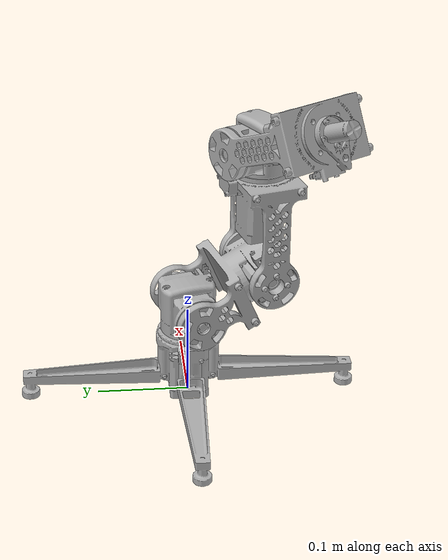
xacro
<?xml version="1.0" ?>
<robot name="proto" xmlns:xacro="http://www.ros.org/wiki/xacro">

<xacro:include filename="$(find proto_description)/urdf/materials.xacro" />
<xacro:include filename="$(find proto_description)/urdf/proto.trans" />
<xacro:include filename="$(find proto_description)/urdf/proto.gazebo" />
<link name="base_link">
  <inertial>
    <origin rpy="0 0 0" xyz="-0.0006244704600712999 -7.232694834270641e-06 0.0359784642751064"/>
    <mass value="0.26119687495403604"/>
    <inertia ixx="0.000747" ixy="0.0" ixz="5e-06" iyy="0.000751" iyz="-0.0" izz="0.001259"/>
  </inertial>
  <visual>
    <origin rpy="0 0 0" xyz="0 0 0"/>
    <geometry>
      <mesh filename="package://proto_description/meshes/base_link.stl" scale="0.001 0.001 0.001"/>
    </geometry>
    <material name="silver"/>
  </visual>
  <collision>
    <origin rpy="0 0 0" xyz="0 0 0"/>
    <geometry>
      <mesh filename="package://proto_description/meshes/base_link.stl" scale="0.001 0.001 0.001"/>
    </geometry>
  </collision>
</link>

<link name="shoulder_link_1_1">
  <inertial>
    <origin rpy="0 0 0" xyz="-0.0009079559657418734 -0.0015133217215439793 0.033919147547046044"/>
    <mass value="0.18619075805658886"/>
    <inertia ixx="8.7e-05" ixy="-3e-06" ixz="-2e-06" iyy="0.000124" iyz="1e-06" izz="0.000123"/>
  </inertial>
  <visual>
    <origin rpy="0 0 0" xyz="-0.0 -0.0 -0.07025"/>
    <geometry>
      <mesh filename="package://proto_description/meshes/shoulder_link_1_1.stl" scale="0.001 0.001 0.001"/>
    </geometry>
    <material name="silver"/>
  </visual>
  <collision>
    <origin rpy="0 0 0" xyz="-0.0 -0.0 -0.07025"/>
    <geometry>
      <mesh filename="package://proto_description/meshes/shoulder_link_1_1.stl" scale="0.001 0.001 0.001"/>
    </geometry>
  </collision>
</link>

<link name="upper_link_1">
  <inertial>
    <origin rpy="0 0 0" xyz="0.061931198177829286 -0.048971978432293437 0.028124060023449332"/>
    <mass value="0.30108115363872223"/>
    <inertia ixx="0.000388" ixy="8e-06" ixz="-1.4e-05" iyy="0.000341" iyz="9e-05" izz="0.000494"/>
  </inertial>
  <visual>
    <origin rpy="0 0 0" xyz="0.044191 0.011841 -0.10385"/>
    <geometry>
      <mesh filename="package://proto_description/meshes/upper_link_1.stl" scale="0.001 0.001 0.001"/>
    </geometry>
    <material name="silver"/>
  </visual>
  <collision>
    <origin rpy="0 0 0" xyz="0.044191 0.011841 -0.10385"/>
    <geometry>
      <mesh filename="package://proto_description/meshes/upper_link_1.stl" scale="0.001 0.001 0.001"/>
    </geometry>
  </collision>
</link>

<link name="lower_link_1_1">
  <inertial>
    <origin rpy="0 0 0" xyz="-0.04514584214050543 -0.011083808837687545 0.07125808341355"/>
    <mass value="0.2304261792350949"/>
    <inertia ixx="0.000386" ixy="-3.4e-05" ixz="-9e-06" iyy="0.000502" iyz="-1e-05" izz="0.000242"/>
  </inertial>
  <visual>
    <origin rpy="0 0 0" xyz="-0.065307 0.066961 -0.139044"/>
    <geometry>
      <mesh filename="package://proto_description/meshes/lower_link_1_1.stl" scale="0.001 0.001 0.001"/>
    </geometry>
    <material name="silver"/>
  </visual>
  <collision>
    <origin rpy="0 0 0" xyz="-0.065307 0.066961 -0.139044"/>
    <geometry>
      <mesh filename="package://proto_description/meshes/lower_link_1_1.stl" scale="0.001 0.001 0.001"/>
    </geometry>
  </collision>
</link>

<link name="shoulder_link_2_1">
  <inertial>
    <origin rpy="0 0 0" xyz="-0.0016970413627136992 0.0004848743008749462 0.03391918641583466"/>
    <mass value="0.18619075805658886"/>
    <inertia ixx="0.00012" ixy="1.2e-05" ixz="1e-06" iyy="9.1e-05" iyz="2e-06" izz="0.000123"/>
  </inertial>
  <visual>
    <origin rpy="0 0 0" xyz="-0.021116 0.078802 -0.249294"/>
    <geometry>
      <mesh filename="package://proto_description/meshes/shoulder_link_2_1.stl" scale="0.001 0.001 0.001"/>
    </geometry>
    <material name="silver"/>
  </visual>
  <collision>
    <origin rpy="0 0 0" xyz="-0.021116 0.078802 -0.249294"/>
    <geometry>
      <mesh filename="package://proto_description/meshes/shoulder_link_2_1.stl" scale="0.001 0.001 0.001"/>
    </geometry>
  </collision>
</link>

<link name="lower_link_2_1">
  <inertial>
    <origin rpy="0 0 0" xyz="-0.03305000853986549 -0.07274685301709907 0.02922780640062922"/>
    <mass value="0.2304261792350949"/>
    <inertia ixx="0.000299" ixy="-3.5e-05" ixz="8.7e-05" iyy="0.000363" iyz="4.5e-05" izz="0.000468"/>
  </inertial>
  <visual>
    <origin rpy="0 0 0" xyz="0.001759 0.039182 -0.282894"/>
    <geometry>
      <mesh filename="package://proto_description/meshes/lower_link_2_1.stl" scale="0.001 0.001 0.001"/>
    </geometry>
    <material name="silver"/>
  </visual>
  <collision>
    <origin rpy="0 0 0" xyz="0.001759 0.039182 -0.282894"/>
    <geometry>
      <mesh filename="package://proto_description/meshes/lower_link_2_1.stl" scale="0.001 0.001 0.001"/>
    </geometry>
  </collision>
</link>

<link name="Magnet_link_1">
  <inertial>
    <origin rpy="0 0 0" xyz="-0.013798980858855975 -0.008754530965656537 0.004803413383174915"/>
    <mass value="0.022667117571548014"/>
    <inertia ixx="5e-06" ixy="-1e-06" ixz="1e-06" iyy="6e-06" iyz="0.0" izz="5e-06"/>
  </inertial>
  <visual>
    <origin rpy="0 0 0" xyz="0.065418 0.128763 -0.329488"/>
    <geometry>
      <mesh filename="package://proto_description/meshes/Magnet_link_1.stl" scale="0.001 0.001 0.001"/>
    </geometry>
    <material name="silver"/>
  </visual>
  <collision>
    <origin rpy="0 0 0" xyz="0.065418 0.128763 -0.329488"/>
    <geometry>
      <mesh filename="package://proto_description/meshes/Magnet_link_1.stl" scale="0.001 0.001 0.001"/>
    </geometry>
  </collision>
</link>

<joint name="Rev1" type="continuous">
  <origin rpy="0 0 0" xyz="0.0 0.0 0.07025"/>
  <parent link="base_link"/>
  <child link="shoulder_link_1_1"/>
  <axis xyz="0.0 0.0 1.0"/>
</joint>

<joint name="Rev2" type="revolute">
  <origin rpy="0 0 0" xyz="-0.044191 -0.011841 0.0336"/>
  <parent link="shoulder_link_1_1"/>
  <child link="upper_link_1"/>
  <axis xyz="-0.965926 -0.258819 -0.0"/>
  <limit effort="100" lower="-0.785398" upper="3.054326" velocity="100"/>
</joint>

<joint name="Rev3" type="revolute">
  <origin rpy="0 0 0" xyz="0.109498 -0.05512 0.035194"/>
  <parent link="upper_link_1"/>
  <child link="lower_link_1_1"/>
  <axis xyz="0.965926 0.258819 0.0"/>
  <limit effort="100" lower="-0.610865" upper="2.96706" velocity="100"/>
</joint>

<joint name="Rev4" type="continuous">
  <origin rpy="0 0 0" xyz="-0.044191 -0.011841 0.11025"/>
  <parent link="lower_link_1_1"/>
  <child link="shoulder_link_2_1"/>
  <axis xyz="0.0 -0.0 -1.0"/>
</joint>

<joint name="Rev5" type="revolute">
  <origin rpy="0 0 0" xyz="-0.022875 0.03962 0.0336"/>
  <parent link="shoulder_link_2_1"/>
  <child link="lower_link_2_1"/>
  <axis xyz="-0.5 0.866025 -0.0"/>
  <limit effort="100" lower="-0.610865" upper="2.879793" velocity="100"/>
</joint>

<joint name="Rev6" type="continuous">
  <origin rpy="0 0 0" xyz="-0.063659 -0.089581 0.046594"/>
  <parent link="lower_link_2_1"/>
  <child link="Magnet_link_1"/>
  <axis xyz="0.784886 0.453154 -0.422618"/>
</joint>

</robot>

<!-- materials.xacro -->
<robot name="proto" xmlns:xacro="http://www.ros.org/wiki/xacro" >

<material name="silver">
  <color rgba="0.700 0.700 0.700 1.000"/>
</material>

</robot>

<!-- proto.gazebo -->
<robot name="proto" xmlns:xacro="http://www.ros.org/wiki/xacro" >

<xacro:property name="body_color" value="Gazebo/Silver" />

<gazebo>
  <plugin filename="libgazebo_ros_control.so" name="control"/>
</gazebo>
<gazebo reference="base_link">
  <material>${body_color}</material>
  <mu1>0.2</mu1>
  <mu2>0.2</mu2>
  <selfCollide>true</selfCollide>
  <gravity>true</gravity>
</gazebo>

<gazebo reference="shoulder_link_1_1">
  <material>${body_color}</material>
  <mu1>0.2</mu1>
  <mu2>0.2</mu2>
  <selfCollide>true</selfCollide>
</gazebo>

<gazebo reference="upper_link_1">
  <material>${body_color}</material>
  <mu1>0.2</mu1>
  <mu2>0.2</mu2>
  <selfCollide>true</selfCollide>
</gazebo>

<gazebo reference="lower_link_1_1">
  <material>${body_color}</material>
  <mu1>0.2</mu1>
  <mu2>0.2</mu2>
  <selfCollide>true</selfCollide>
</gazebo>

<gazebo reference="shoulder_link_2_1">
  <material>${body_color}</material>
  <mu1>0.2</mu1>
  <mu2>0.2</mu2>
  <selfCollide>true</selfCollide>
</gazebo>

<gazebo reference="lower_link_2_1">
  <material>${body_color}</material>
  <mu1>0.2</mu1>
  <mu2>0.2</mu2>
  <selfCollide>true</selfCollide>
</gazebo>

<gazebo reference="Magnet_link_1">
  <material>${body_color}</material>
  <mu1>0.2</mu1>
  <mu2>0.2</mu2>
  <selfCollide>true</selfCollide>
</gazebo>

</robot>
